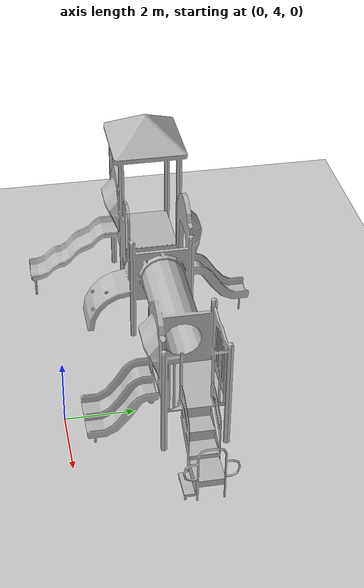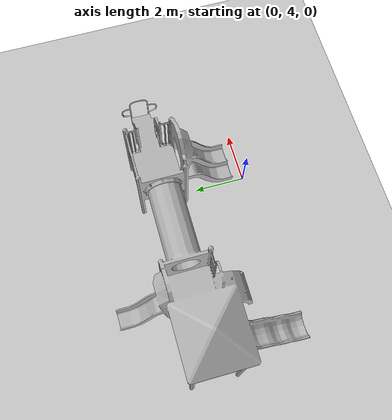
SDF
<?xml version="1.0" ?>
<sdf version="1.4">
  <world name="default">
    <include>
      <uri>model://ground_plane</uri>
    </include>
    <include>
      <uri>model://sun</uri>
    </include>
    <include>
      <uri>model://playground</uri>
      <name>playground</name>
      <pose>-2.0 7.0 0 0 0 0</pose>
    </include>
  </world>
</sdf>

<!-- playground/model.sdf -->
<sdf version="1.6">
  <model name="playground">
    <static>true</static>
    <link name="link">
      <collision name="collision">
        <geometry>
          <mesh>
            <uri>model://playground/meshes/playground.dae</uri>
          </mesh>
        </geometry>
      </collision>
      <visual name="visual">
        <geometry>
          <mesh>
            <uri>model://playground/meshes/playground.dae</uri>
          </mesh>
        </geometry>
      </visual>
    </link>
  </model>
</sdf>
